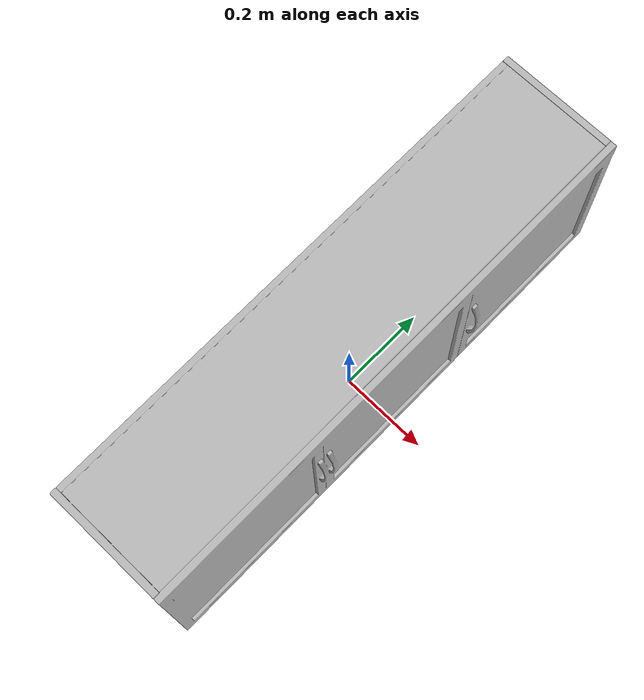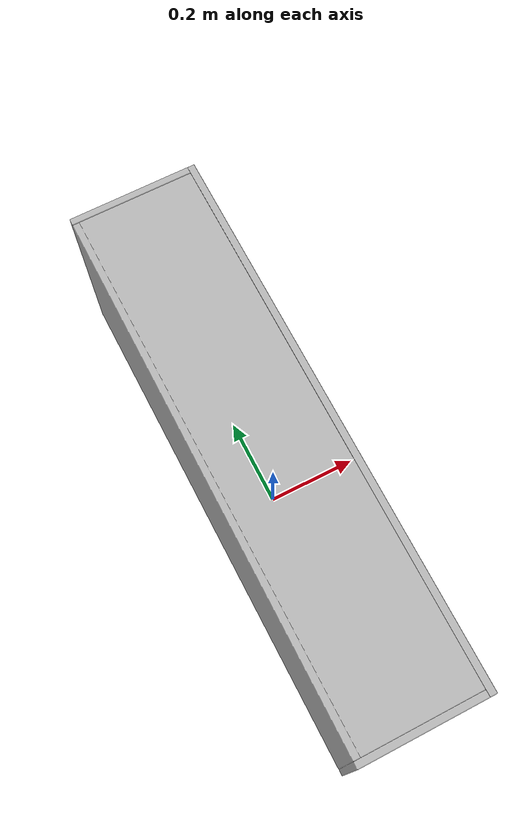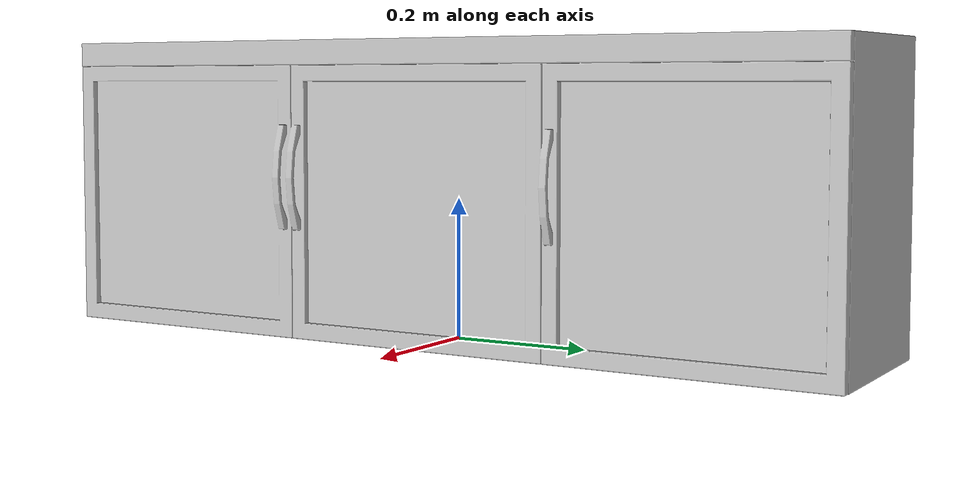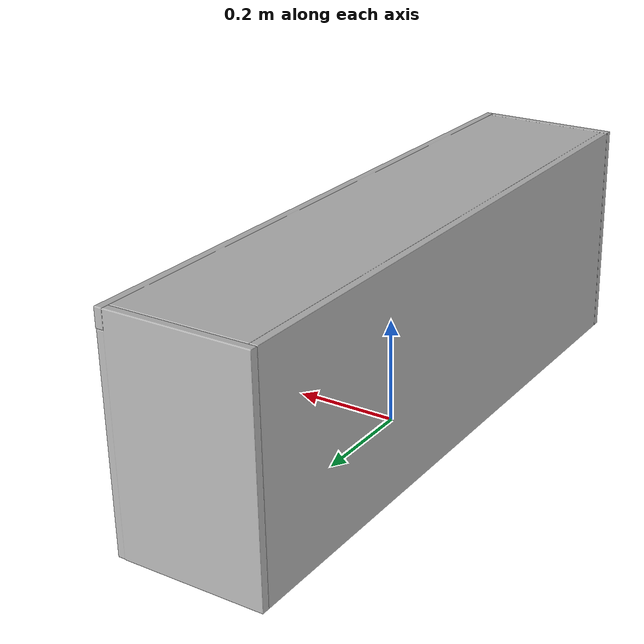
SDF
<?xml version='1.0'?>
<sdf version='1.4'>
  <model name='387'>
    <pose>0 0 0 0 0 0</pose>
    <static>true</static>
    <link name='link'>
      <collision name='collision'>
        <pose>0 0 0 0 0 0</pose>
        <geometry>
          <box>
            <size>0.299626 1.20006 2</size>
          </box>
        </geometry>
      </collision>
      <visual name='visual'>
        <pose>0 0 0 0 0 0</pose>
        <geometry>
          <mesh><uri>model://387/387.dae</uri></mesh>
        </geometry>
      </visual>
    </link>
  </model>
</sdf>
